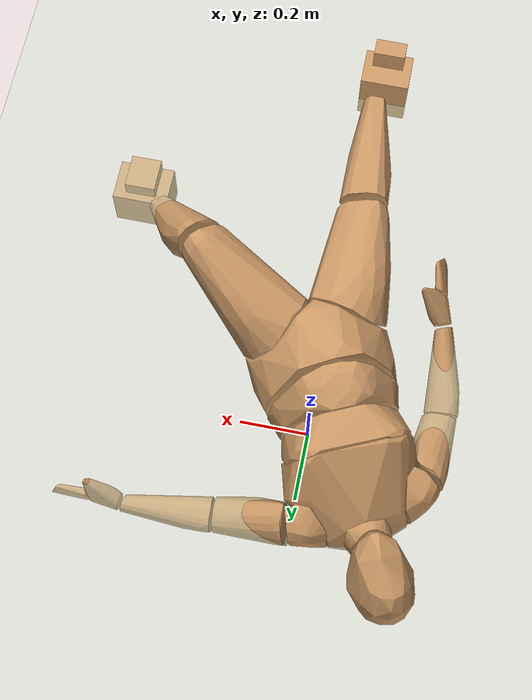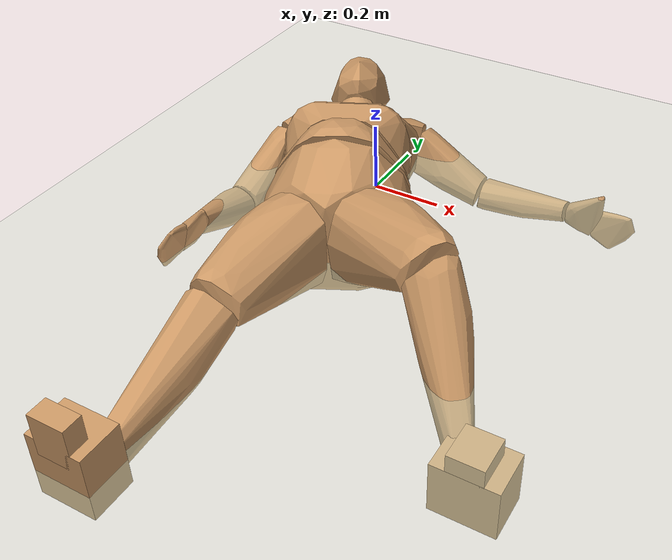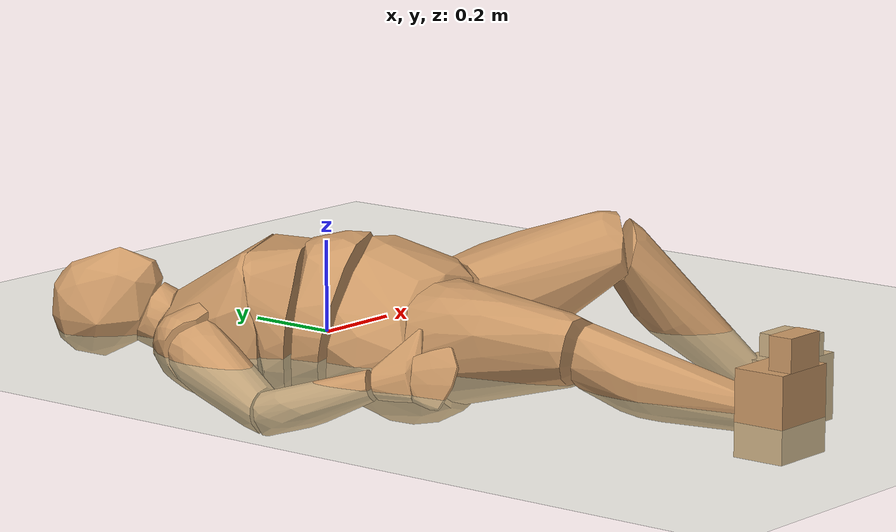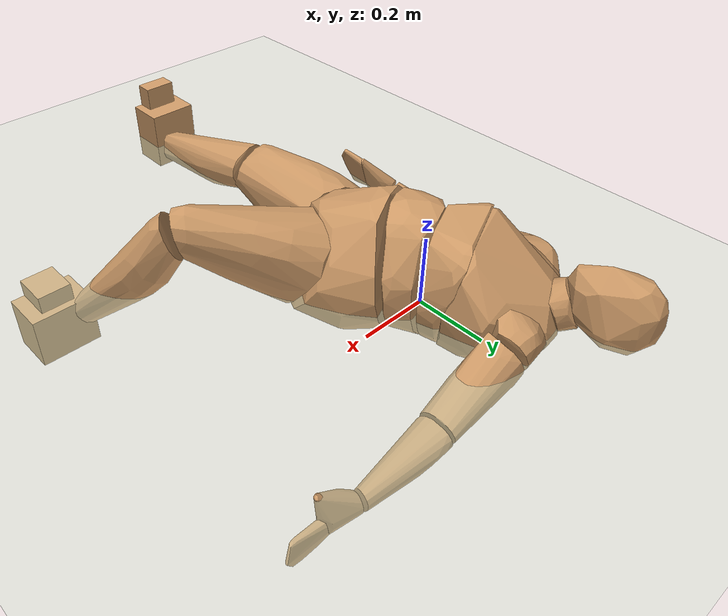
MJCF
<mujoco model="humanoid">
  <compiler coordinate="local" meshdir="asset/smpl_meshes/geom"/>
  <default>
    <joint damping="0.0" armature="0.01" stiffness="0.0" limited="true" />
    <geom conaffinity="1" condim="3" contype="7" margin="0.001" rgba="0.8 0.6 .4 1"/>
  </default>
  <asset>
    <texture type="skybox" builtin="gradient" rgb1=".4 .5 .6" rgb2="0 0 0" width="100" height="100"/>
    <texture builtin="flat" height="1278" mark="cross" markrgb="1 1 1" name="texgeom" random="0.01" rgb1="0.8 0.6 0.4" rgb2="0.8 0.6 0.4" type="cube" width="127"/>
    <texture builtin="checker" height="100" name="texplane" rgb1="0 0 0" rgb2="0.8 0.8 0.8" type="2d" width="100"/>
    <material name="MatPlane" reflectance="0.5" shininess="1" specular="1" texrepeat="60 60" texture="texplane"/>
    <material name="geom" texture="texgeom" texuniform="true"/>
    <mesh file="Pelvis.stl" name="Pelvis_mesh"/>
    <mesh file="L_Hip.stl" name="L_Hip_mesh"/>
    <mesh file="R_Hip.stl" name="R_Hip_mesh"/>
    <mesh file="Torso.stl" name="Torso_mesh"/>
    <mesh file="L_Knee.stl" name="L_Knee_mesh"/>
    <mesh file="R_Knee.stl" name="R_Knee_mesh"/>
    <mesh file="Spine.stl" name="Spine_mesh"/>
    <mesh file="L_Ankle.stl" name="L_Ankle_mesh"/>
    <mesh file="R_Ankle.stl" name="R_Ankle_mesh"/>
    <mesh file="Chest.stl" name="Chest_mesh"/>
    <mesh file="L_Toe.stl" name="L_Toe_mesh"/>
    <mesh file="R_Toe.stl" name="R_Toe_mesh"/>
    <mesh file="Neck.stl" name="Neck_mesh"/>
    <mesh file="L_Thorax.stl" name="L_Thorax_mesh"/>
    <mesh file="R_Thorax.stl" name="R_Thorax_mesh"/>
    <mesh file="Head.stl" name="Head_mesh"/>
    <mesh file="L_Shoulder.stl" name="L_Shoulder_mesh"/>
    <mesh file="R_Shoulder.stl" name="R_Shoulder_mesh"/>
    <mesh file="L_Elbow.stl" name="L_Elbow_mesh"/>
    <mesh file="R_Elbow.stl" name="R_Elbow_mesh"/>
    <mesh file="L_Wrist.stl" name="L_Wrist_mesh"/>
    <mesh file="R_Wrist.stl" name="R_Wrist_mesh"/>
    <mesh file="L_Hand.stl" name="L_Hand_mesh"/>
    <mesh file="R_Hand.stl" name="R_Hand_mesh"/>
  </asset>
  <worldbody>
    <light cutoff="100" diffuse="1 1 1" dir="-0 0 -1.3" directional="true" exponent="1" pos="0 0 1.3" specular=".1 .1 .1"/>
    <geom conaffinity="1" condim="3" name="floor" pos="0 0 0" rgba="0.8 0.9 0.8 1" size="100 100 .2" type="plane" material="MatPlane"/>
    <body name="Pelvis" pos="-0.0003 -0.2243 0.0422">
      <freejoint name="Pelvis"/>
      <geom type="mesh" mesh="Pelvis_mesh" density="1000" contype="1" conaffinity="1"/>
      <body name="L_Hip" pos="0.1173 -0.0572 -0.0071">
        <joint name="L_Hip_x" type="hinge" pos="0 0 0" axis="1 0 0" user="800 80 1 500" armature="0.01" range="-90.0000 90.0000" damping="0.1" stiffness="10"/>
        <joint name="L_Hip_y" type="hinge" pos="0 0 0" axis="0 1 0" user="800 80 1 500" armature="0.01" range="-90.0000 90.0000" damping="0.1" stiffness="10"/>
        <joint name="L_Hip_z" type="hinge" pos="0 0 0" axis="0 0 1" user="800 80 1 500" armature="0.01" range="-90.0000 90.0000" damping="0.1" stiffness="10"/>
        <geom type="mesh" mesh="L_Hip_mesh" density="1000" contype="1" conaffinity="1"/>
        <body name="L_Knee" pos="0.3249 -0.1827 0.1434">
          <joint name="L_Knee_x" type="hinge" pos="0 0 0" axis="1 0 0" user="800 80 1 500" armature="0.01" range="-180.0000 180.0000" damping="0.1" stiffness="10"/>
          <joint name="L_Knee_y" type="hinge" pos="0 0 0" axis="0 1 0" user="800 80 1 500" armature="0.01" range="-5.6250 5.6250" damping="0.1" stiffness="10"/>
          <joint name="L_Knee_z" type="hinge" pos="0 0 0" axis="0 0 1" user="800 80 1 500" armature="0.01" range="-5.6250 5.6250" damping="0.1" stiffness="10"/>
          <geom type="mesh" mesh="L_Knee_mesh" density="1000" contype="1" conaffinity="1"/>
          <body name="L_Ankle" pos="0.1806 -0.2538 -0.3061">
            <joint name="L_Ankle_x" type="hinge" pos="0 0 0" axis="1 0 0" user="800 80 1 500" armature="0.01" range="-90.0000 90.0000" damping="0.1" stiffness="10"/>
            <joint name="L_Ankle_y" type="hinge" pos="0 0 0" axis="0 1 0" user="800 80 1 500" armature="0.01" range="-90.0000 90.0000" damping="0.1" stiffness="10"/>
            <joint name="L_Ankle_z" type="hinge" pos="0 0 0" axis="0 0 1" user="800 80 1 500" armature="0.01" range="-90.0000 90.0000" damping="0.1" stiffness="10"/>
            <geom density="265.31146" type="box" pos="0.0525 -0.0222 -0.0117" size="0.0867 0.0639 0.0754" quat="1.0000 0.0000 0.0000 0.0000"/>
            <body name="L_Toe" pos="0.1233 -0.0501 0.0509">
              <joint name="L_Toe_x" type="hinge" pos="0 0 0" axis="1 0 0" user="500 50 1 500" armature="0.01" range="-90.0000 90.0000" damping="0.1" stiffness="10"/>
              <joint name="L_Toe_y" type="hinge" pos="0 0 0" axis="0 1 0" user="500 50 1 500" armature="0.01" range="-45.0000 45.0000" damping="0.1" stiffness="10"/>
              <joint name="L_Toe_z" type="hinge" pos="0 0 0" axis="0 0 1" user="500 50 1 500" armature="0.01" range="-45.0000 45.0000" damping="0.1" stiffness="10"/>
              <geom density="216.95439" type="box" pos="-0.0708 0.0163 0.0158" size="0.0474 0.0523 0.048" quat="1.0000 0.0000 0.0000 0.0000"/>
            </body>
          </body>
        </body>
      </body>
      <body name="R_Hip" pos="-0.0313 -0.1254 -0.0022">
        <joint name="R_Hip_x" type="hinge" pos="0 0 0" axis="1 0 0" user="800 80 1 500" armature="0.01" range="-90.0000 90.0000" damping="0.1" stiffness="10"/>
        <joint name="R_Hip_y" type="hinge" pos="0 0 0" axis="0 1 0" user="800 80 1 500" armature="0.01" range="-90.0000 90.0000" damping="0.1" stiffness="10"/>
        <joint name="R_Hip_z" type="hinge" pos="0 0 0" axis="0 0 1" user="800 80 1 500" armature="0.01" range="-90.0000 90.0000" damping="0.1" stiffness="10"/>
        <geom type="mesh" mesh="R_Hip_mesh" density="1000" contype="1" conaffinity="1"/>
        <body name="R_Knee" pos="-0.0297 -0.4065 0.0314">
          <joint name="R_Knee_x" type="hinge" pos="0 0 0" axis="1 0 0" user="800 80 1 500" armature="0.01" range="-180.0000 180.0000" damping="0.1" stiffness="10"/>
          <joint name="R_Knee_y" type="hinge" pos="0 0 0" axis="0 1 0" user="800 80 1 500" armature="0.01" range="-5.6250 5.6250" damping="0.1" stiffness="10"/>
          <joint name="R_Knee_z" type="hinge" pos="0 0 0" axis="0 0 1" user="800 80 1 500" armature="0.01" range="-5.6250 5.6250" damping="0.1" stiffness="10"/>
          <geom type="mesh" mesh="R_Knee_mesh" density="1000" contype="1" conaffinity="1"/>
          <body name="R_Ankle" pos="0.074 -0.4246 -0.0776">
            <joint name="R_Ankle_x" type="hinge" pos="0 0 0" axis="1 0 0" user="800 80 1 500" armature="0.01" range="-90.0000 90.0000" damping="0.1" stiffness="10"/>
            <joint name="R_Ankle_y" type="hinge" pos="0 0 0" axis="0 1 0" user="800 80 1 500" armature="0.01" range="-90.0000 90.0000" damping="0.1" stiffness="10"/>
            <joint name="R_Ankle_z" type="hinge" pos="0 0 0" axis="0 0 1" user="800 80 1 500" armature="0.01" range="-90.0000 90.0000" damping="0.1" stiffness="10"/>
            <geom density="295.39114" type="box" pos="-0.0346 -0.0255 0.0229" size="0.0752 0.0578 0.0906" quat="1.0000 0.0000 0.0000 0.0000"/>
            <body name="R_Toe" pos="-0.0758 -0.068 0.1027">
              <joint name="R_Toe_x" type="hinge" pos="0 0 0" axis="1 0 0" user="500 50 1 500" armature="0.01" range="-90.0000 90.0000" damping="0.1" stiffness="10"/>
              <joint name="R_Toe_y" type="hinge" pos="0 0 0" axis="0 1 0" user="500 50 1 500" armature="0.01" range="-45.0000 45.0000" damping="0.1" stiffness="10"/>
              <joint name="R_Toe_z" type="hinge" pos="0 0 0" axis="0 0 1" user="500 50 1 500" armature="0.01" range="-45.0000 45.0000" damping="0.1" stiffness="10"/>
              <geom density="361.69293" type="box" pos="0.0412 0.0113 0.0232" size="0.0484 0.0266 0.0581" quat="1.0000 0.0000 0.0000 0.0000"/>
            </body>
          </body>
        </body>
      </body>
      <body name="Torso" pos="-0.0527 0.1087 -0.0327">
        <joint name="Torso_x" type="hinge" pos="0 0 0" axis="1 0 0" user="1000 100 1 500" armature="0.01" range="-60.0000 60.0000" damping="0.1" stiffness="10"/>
        <joint name="Torso_y" type="hinge" pos="0 0 0" axis="0 1 0" user="1000 100 1 500" armature="0.01" range="-60.0000 60.0000" damping="0.1" stiffness="10"/>
        <joint name="Torso_z" type="hinge" pos="0 0 0" axis="0 0 1" user="1000 100 1 500" armature="0.01" range="-60.0000 60.0000" damping="0.1" stiffness="10"/>
        <geom type="mesh" mesh="Torso_mesh" density="1000" contype="1" conaffinity="1"/>
        <body name="Spine" pos="-0.0509 0.1201 0.0013">
          <joint name="Spine_x" type="hinge" pos="0 0 0" axis="1 0 0" user="1000 100 1 500" armature="0.01" range="-60.0000 60.0000" damping="0.1" stiffness="10"/>
          <joint name="Spine_y" type="hinge" pos="0 0 0" axis="0 1 0" user="1000 100 1 500" armature="0.01" range="-60.0000 60.0000" damping="0.1" stiffness="10"/>
          <joint name="Spine_z" type="hinge" pos="0 0 0" axis="0 0 1" user="1000 100 1 500" armature="0.01" range="-60.0000 60.0000" damping="0.1" stiffness="10"/>
          <geom type="mesh" mesh="Spine_mesh" density="1000" contype="1" conaffinity="1"/>
          <body name="Chest" pos="-0.0197 0.0468 0.039">
            <joint name="Chest_x" type="hinge" pos="0 0 0" axis="1 0 0" user="1000 100 1 500" armature="0.01" range="-60.0000 60.0000" damping="0.1" stiffness="10"/>
            <joint name="Chest_y" type="hinge" pos="0 0 0" axis="0 1 0" user="1000 100 1 500" armature="0.01" range="-60.0000 60.0000" damping="0.1" stiffness="10"/>
            <joint name="Chest_z" type="hinge" pos="0 0 0" axis="0 0 1" user="1000 100 1 500" armature="0.01" range="-60.0000 60.0000" damping="0.1" stiffness="10"/>
            <geom type="mesh" mesh="Chest_mesh" density="1000" contype="1" conaffinity="1"/>
            <body name="Neck" pos="-0.0946 0.205 -0.0371">
              <joint name="Neck_x" type="hinge" pos="0 0 0" axis="1 0 0" user="500 50 1 250" armature="0.01" range="-180.0000 180.0000" damping="0.1" stiffness="10"/>
              <joint name="Neck_y" type="hinge" pos="0 0 0" axis="0 1 0" user="500 50 1 250" armature="0.01" range="-180.0000 180.0000" damping="0.1" stiffness="10"/>
              <joint name="Neck_z" type="hinge" pos="0 0 0" axis="0 0 1" user="500 50 1 250" armature="0.01" range="-180.0000 180.0000" damping="0.1" stiffness="10"/>
              <geom type="mesh" mesh="Neck_mesh" density="1000" contype="1" conaffinity="1"/>
              <body name="Head" pos="-0.0205 0.0497 0.056">
                <joint name="Head_x" type="hinge" pos="0 0 0" axis="1 0 0" user="500 50 1 250" armature="0.01" range="-90.0000 90.0000" damping="0.1" stiffness="10"/>
                <joint name="Head_y" type="hinge" pos="0 0 0" axis="0 1 0" user="500 50 1 250" armature="0.01" range="-90.0000 90.0000" damping="0.1" stiffness="10"/>
                <joint name="Head_z" type="hinge" pos="0 0 0" axis="0 0 1" user="500 50 1 250" armature="0.01" range="-90.0000 90.0000" damping="0.1" stiffness="10"/>
                <geom type="mesh" mesh="Head_mesh" density="1000" contype="1" conaffinity="1"/>
              </body>
            </body>
            <body name="L_Thorax" pos="0.0233 0.1572 -0.031">
              <joint name="L_Thorax_x" type="hinge" pos="0 0 0" axis="1 0 0" user="500 50 1 500" armature="0.01" range="-180.0000 180.0000" damping="0.1" stiffness="10"/>
              <joint name="L_Thorax_y" type="hinge" pos="0 0 0" axis="0 1 0" user="500 50 1 500" armature="0.01" range="-180.0000 180.0000" damping="0.1" stiffness="10"/>
              <joint name="L_Thorax_z" type="hinge" pos="0 0 0" axis="0 0 1" user="500 50 1 500" armature="0.01" range="-180.0000 180.0000" damping="0.1" stiffness="10"/>
              <geom type="mesh" mesh="L_Thorax_mesh" density="1000" contype="1" conaffinity="1"/>
              <body name="L_Shoulder" pos="0.0779 0.0631 -0.0102">
                <joint name="L_Shoulder_x" type="hinge" pos="0 0 0" axis="1 0 0" user="500 50 1 500" armature="0.01" range="-180.0000 180.0000" damping="0.1" stiffness="10"/>
                <joint name="L_Shoulder_y" type="hinge" pos="0 0 0" axis="0 1 0" user="500 50 1 500" armature="0.01" range="-180.0000 180.0000" damping="0.1" stiffness="10"/>
                <joint name="L_Shoulder_z" type="hinge" pos="0 0 0" axis="0 0 1" user="500 50 1 500" armature="0.01" range="-180.0000 180.0000" damping="0.1" stiffness="10"/>
                <geom type="mesh" mesh="L_Shoulder_mesh" density="1000" contype="1" conaffinity="1"/>
                <body name="L_Elbow" pos="0.2522 -0.0118 -0.1256">
                  <joint name="L_Elbow_x" type="hinge" pos="0 0 0" axis="1 0 0" user="500 50 1 150" armature="0.01" range="-720.0000 720.0000" damping="0.1" stiffness="10"/>
                  <joint name="L_Elbow_y" type="hinge" pos="0 0 0" axis="0 1 0" user="500 50 1 150" armature="0.01" range="-720.0000 720.0000" damping="0.1" stiffness="10"/>
                  <joint name="L_Elbow_z" type="hinge" pos="0 0 0" axis="0 0 1" user="500 50 1 150" armature="0.01" range="-720.0000 720.0000" damping="0.1" stiffness="10"/>
                  <geom type="mesh" mesh="L_Elbow_mesh" density="1000" contype="1" conaffinity="1"/>
                  <body name="L_Wrist" pos="0.2685 0.0223 0.0185">
                    <joint name="L_Wrist_x" type="hinge" pos="0 0 0" axis="1 0 0" user="300 30 1 150" armature="0.01" range="-180.0000 180.0000" damping="0.1" stiffness="10"/>
                    <joint name="L_Wrist_y" type="hinge" pos="0 0 0" axis="0 1 0" user="300 30 1 150" armature="0.01" range="-180.0000 180.0000" damping="0.1" stiffness="10"/>
                    <joint name="L_Wrist_z" type="hinge" pos="0 0 0" axis="0 0 1" user="300 30 1 150" armature="0.01" range="-180.0000 180.0000" damping="0.1" stiffness="10"/>
                    <geom type="mesh" mesh="L_Wrist_mesh" density="1000" contype="1" conaffinity="1"/>
                    <body name="L_Hand" pos="0.0924 -0.0065 -0.0097">
                      <joint name="L_Hand_x" type="hinge" pos="0 0 0" axis="1 0 0" user="300 30 1 150" armature="0.01" range="-180.0000 180.0000" damping="0.1" stiffness="10"/>
                      <joint name="L_Hand_y" type="hinge" pos="0 0 0" axis="0 1 0" user="300 30 1 150" armature="0.01" range="-180.0000 180.0000" damping="0.1" stiffness="10"/>
                      <joint name="L_Hand_z" type="hinge" pos="0 0 0" axis="0 0 1" user="300 30 1 150" armature="0.01" range="-180.0000 180.0000" damping="0.1" stiffness="10"/>
                      <geom type="mesh" mesh="L_Hand_mesh" density="1000" contype="1" conaffinity="1"/>
                    </body>
                  </body>
                </body>
              </body>
            </body>
            <body name="R_Thorax" pos="-0.1346 0.0822 -0.0359">
              <joint name="R_Thorax_x" type="hinge" pos="0 0 0" axis="1 0 0" user="500 50 1 150" armature="0.01" range="-180.0000 180.0000" damping="0.1" stiffness="10"/>
              <joint name="R_Thorax_y" type="hinge" pos="0 0 0" axis="0 1 0" user="500 50 1 150" armature="0.01" range="-180.0000 180.0000" damping="0.1" stiffness="10"/>
              <joint name="R_Thorax_z" type="hinge" pos="0 0 0" axis="0 0 1" user="500 50 1 150" armature="0.01" range="-180.0000 180.0000" damping="0.1" stiffness="10"/>
              <geom type="mesh" mesh="R_Thorax_mesh" density="1000" contype="1" conaffinity="1"/>
              <body name="R_Shoulder" pos="-0.0965 -0.0452 0.0013">
                <joint name="R_Shoulder_x" type="hinge" pos="0 0 0" axis="1 0 0" user="500 50 1 250" armature="0.01" range="-180.0000 180.0000" damping="0.1" stiffness="10"/>
                <joint name="R_Shoulder_y" type="hinge" pos="0 0 0" axis="0 1 0" user="500 50 1 250" armature="0.01" range="-180.0000 180.0000" damping="0.1" stiffness="10"/>
                <joint name="R_Shoulder_z" type="hinge" pos="0 0 0" axis="0 0 1" user="500 50 1 250" armature="0.01" range="-180.0000 180.0000" damping="0.1" stiffness="10"/>
                <geom type="mesh" mesh="R_Shoulder_mesh" density="1000" contype="1" conaffinity="1"/>
                <body name="R_Elbow" pos="-0.0225 -0.253 -0.1133">
                  <joint name="R_Elbow_x" type="hinge" pos="0 0 0" axis="1 0 0" user="500 50 1 150" armature="0.01" range="-720.0000 720.0000" damping="0.1" stiffness="10"/>
                  <joint name="R_Elbow_y" type="hinge" pos="0 0 0" axis="0 1 0" user="500 50 1 150" armature="0.01" range="-720.0000 720.0000" damping="0.1" stiffness="10"/>
                  <joint name="R_Elbow_z" type="hinge" pos="0 0 0" axis="0 0 1" user="500 50 1 150" armature="0.01" range="-720.0000 720.0000" damping="0.1" stiffness="10"/>
                  <geom type="mesh" mesh="R_Elbow_mesh" density="1000" contype="1" conaffinity="1"/>
                  <body name="R_Wrist" pos="0.0399 -0.2548 0.1019">
                    <joint name="R_Wrist_x" type="hinge" pos="0 0 0" axis="1 0 0" user="300 30 1 150" armature="0.01" range="-180.0000 180.0000" damping="0.1" stiffness="10"/>
                    <joint name="R_Wrist_y" type="hinge" pos="0 0 0" axis="0 1 0" user="300 30 1 150" armature="0.01" range="-180.0000 180.0000" damping="0.1" stiffness="10"/>
                    <joint name="R_Wrist_z" type="hinge" pos="0 0 0" axis="0 0 1" user="300 30 1 150" armature="0.01" range="-180.0000 180.0000" damping="0.1" stiffness="10"/>
                    <geom type="mesh" mesh="R_Wrist_mesh" density="1000" contype="1" conaffinity="1"/>
                    <body name="R_Hand" pos="0.02 -0.0893 0.0202">
                      <joint name="R_Hand_x" type="hinge" pos="0 0 0" axis="1 0 0" user="300 30 1 150" armature="0.01" range="-180.0000 180.0000" damping="0.1" stiffness="10"/>
                      <joint name="R_Hand_y" type="hinge" pos="0 0 0" axis="0 1 0" user="300 30 1 150" armature="0.01" range="-180.0000 180.0000" damping="0.1" stiffness="10"/>
                      <joint name="R_Hand_z" type="hinge" pos="0 0 0" axis="0 0 1" user="300 30 1 150" armature="0.01" range="-180.0000 180.0000" damping="0.1" stiffness="10"/>
                      <geom type="mesh" mesh="R_Hand_mesh" density="1000" contype="1" conaffinity="1"/>
                    </body>
                  </body>
                </body>
              </body>
            </body>
          </body>
        </body>
      </body>
    </body>
  </worldbody>
  <actuator>
    <motor name="L_Hip_x" joint="L_Hip_x" gear="1"/>
    <motor name="L_Hip_y" joint="L_Hip_y" gear="1"/>
    <motor name="L_Hip_z" joint="L_Hip_z" gear="1"/>
    <motor name="L_Knee_x" joint="L_Knee_x" gear="1"/>
    <motor name="L_Knee_y" joint="L_Knee_y" gear="1"/>
    <motor name="L_Knee_z" joint="L_Knee_z" gear="1"/>
    <motor name="L_Ankle_x" joint="L_Ankle_x" gear="1"/>
    <motor name="L_Ankle_y" joint="L_Ankle_y" gear="1"/>
    <motor name="L_Ankle_z" joint="L_Ankle_z" gear="1"/>
    <motor name="L_Toe_x" joint="L_Toe_x" gear="1"/>
    <motor name="L_Toe_y" joint="L_Toe_y" gear="1"/>
    <motor name="L_Toe_z" joint="L_Toe_z" gear="1"/>
    <motor name="R_Hip_x" joint="R_Hip_x" gear="1"/>
    <motor name="R_Hip_y" joint="R_Hip_y" gear="1"/>
    <motor name="R_Hip_z" joint="R_Hip_z" gear="1"/>
    <motor name="R_Knee_x" joint="R_Knee_x" gear="1"/>
    <motor name="R_Knee_y" joint="R_Knee_y" gear="1"/>
    <motor name="R_Knee_z" joint="R_Knee_z" gear="1"/>
    <motor name="R_Ankle_x" joint="R_Ankle_x" gear="1"/>
    <motor name="R_Ankle_y" joint="R_Ankle_y" gear="1"/>
    <motor name="R_Ankle_z" joint="R_Ankle_z" gear="1"/>
    <motor name="R_Toe_x" joint="R_Toe_x" gear="1"/>
    <motor name="R_Toe_y" joint="R_Toe_y" gear="1"/>
    <motor name="R_Toe_z" joint="R_Toe_z" gear="1"/>
    <motor name="Torso_x" joint="Torso_x" gear="1"/>
    <motor name="Torso_y" joint="Torso_y" gear="1"/>
    <motor name="Torso_z" joint="Torso_z" gear="1"/>
    <motor name="Spine_x" joint="Spine_x" gear="1"/>
    <motor name="Spine_y" joint="Spine_y" gear="1"/>
    <motor name="Spine_z" joint="Spine_z" gear="1"/>
    <motor name="Chest_x" joint="Chest_x" gear="1"/>
    <motor name="Chest_y" joint="Chest_y" gear="1"/>
    <motor name="Chest_z" joint="Chest_z" gear="1"/>
    <motor name="Neck_x" joint="Neck_x" gear="1"/>
    <motor name="Neck_y" joint="Neck_y" gear="1"/>
    <motor name="Neck_z" joint="Neck_z" gear="1"/>
    <motor name="Head_x" joint="Head_x" gear="1"/>
    <motor name="Head_y" joint="Head_y" gear="1"/>
    <motor name="Head_z" joint="Head_z" gear="1"/>
    <motor name="L_Thorax_x" joint="L_Thorax_x" gear="1"/>
    <motor name="L_Thorax_y" joint="L_Thorax_y" gear="1"/>
    <motor name="L_Thorax_z" joint="L_Thorax_z" gear="1"/>
    <motor name="L_Shoulder_x" joint="L_Shoulder_x" gear="1"/>
    <motor name="L_Shoulder_y" joint="L_Shoulder_y" gear="1"/>
    <motor name="L_Shoulder_z" joint="L_Shoulder_z" gear="1"/>
    <motor name="L_Elbow_x" joint="L_Elbow_x" gear="1"/>
    <motor name="L_Elbow_y" joint="L_Elbow_y" gear="1"/>
    <motor name="L_Elbow_z" joint="L_Elbow_z" gear="1"/>
    <motor name="L_Wrist_x" joint="L_Wrist_x" gear="1"/>
    <motor name="L_Wrist_y" joint="L_Wrist_y" gear="1"/>
    <motor name="L_Wrist_z" joint="L_Wrist_z" gear="1"/>
    <motor name="L_Hand_x" joint="L_Hand_x" gear="1"/>
    <motor name="L_Hand_y" joint="L_Hand_y" gear="1"/>
    <motor name="L_Hand_z" joint="L_Hand_z" gear="1"/>
    <motor name="R_Thorax_x" joint="R_Thorax_x" gear="1"/>
    <motor name="R_Thorax_y" joint="R_Thorax_y" gear="1"/>
    <motor name="R_Thorax_z" joint="R_Thorax_z" gear="1"/>
    <motor name="R_Shoulder_x" joint="R_Shoulder_x" gear="1"/>
    <motor name="R_Shoulder_y" joint="R_Shoulder_y" gear="1"/>
    <motor name="R_Shoulder_z" joint="R_Shoulder_z" gear="1"/>
    <motor name="R_Elbow_x" joint="R_Elbow_x" gear="1"/>
    <motor name="R_Elbow_y" joint="R_Elbow_y" gear="1"/>
    <motor name="R_Elbow_z" joint="R_Elbow_z" gear="1"/>
    <motor name="R_Wrist_x" joint="R_Wrist_x" gear="1"/>
    <motor name="R_Wrist_y" joint="R_Wrist_y" gear="1"/>
    <motor name="R_Wrist_z" joint="R_Wrist_z" gear="1"/>
    <motor name="R_Hand_x" joint="R_Hand_x" gear="1"/>
    <motor name="R_Hand_y" joint="R_Hand_y" gear="1"/>
    <motor name="R_Hand_z" joint="R_Hand_z" gear="1"/>
  </actuator>
  <contact>
    <exclude body1="Torso" body2="Chest"/>
    <exclude body1="Head" body2="Chest"/>
    <exclude body1="R_Knee" body2="R_Toe"/>
    <exclude body1="R_Knee" body2="L_Ankle"/>
    <exclude body1="R_Knee" body2="L_Toe"/>
    <exclude body1="L_Knee" body2="L_Toe"/>
    <exclude body1="L_Knee" body2="R_Ankle"/>
    <exclude body1="L_Knee" body2="R_Toe"/>
    <exclude body1="L_Shoulder" body2="Chest"/>
    <exclude body1="R_Shoulder" body2="Chest"/>
  </contact>
  <sensor/>
  <size njmax="2500" nconmax="500"/>
</mujoco>
